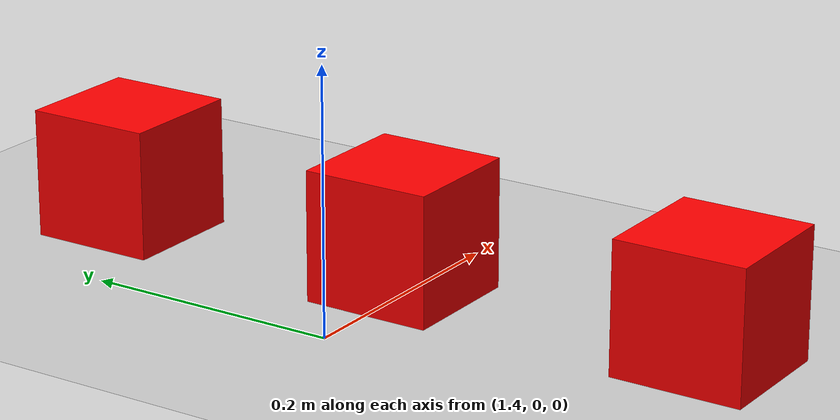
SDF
<sdf version='1.9'>
  <world name='empty'>
    <physics name='1ms' type='ignored'>
      <max_step_size>0.001</max_step_size>
      <real_time_factor>1</real_time_factor>
      <real_time_update_rate>1000</real_time_update_rate>
    </physics>
    <plugin name='gz::sim::systems::Physics' filename='ignition-gazebo-physics-system'/>
    <plugin name='gz::sim::systems::UserCommands' filename='ignition-gazebo-user-commands-system'/>
    <plugin name='gz::sim::systems::SceneBroadcaster' filename='ignition-gazebo-scene-broadcaster-system'/>
    <plugin name='gz::sim::systems::Contact' filename='ignition-gazebo-contact-system'/>
    <gravity>0 0 -9.8</gravity>
    <magnetic_field>6e-06 2.3e-05 -4.2e-05</magnetic_field>
    <atmosphere type='adiabatic'/>
    <scene>
      <ambient>0.4 0.4 0.4 1</ambient>
      <background>0.7 0.7 0.7 1</background>
      <shadows>true</shadows>
    </scene>
    <model name='ground_plane'>
      <static>true</static>
      <link name='link'>
        <collision name='collision'>
          <geometry>
            <plane>
              <normal>0 0 1</normal>
              <size>100 100</size>
            </plane>
          </geometry>
          <surface>
            <friction>
              <ode/>
            </friction>
            <bounce/>
            <contact/>
          </surface>
        </collision>
        <visual name='visual'>
          <geometry>
            <plane>
              <normal>0 0 1</normal>
              <size>100 100</size>
            </plane>
          </geometry>
          <material>
            <ambient>0.8 0.8 0.8 1</ambient>
            <diffuse>0.8 0.8 0.8 1</diffuse>
            <specular>0.8 0.8 0.8 1</specular>
          </material>
        </visual>
        <pose>0 0 0 0 -0 0</pose>
        <inertial>
          <pose>0 0 0 0 -0 0</pose>
          <mass>1</mass>
          <inertia>
            <ixx>1</ixx>
            <ixy>0</ixy>
            <ixz>0</ixz>
            <iyy>1</iyy>
            <iyz>0</iyz>
            <izz>1</izz>
          </inertia>
        </inertial>
        <enable_wind>false</enable_wind>
      </link>
      <pose>0 0 0 0 -0 0</pose>
      <self_collide>false</self_collide>
    </model>
    <model name='cube_1'>
      <link name='link_0'>
        <inertial>
          <mass>0.2</mass>
          <inertia>
            <ixx>0.000333</ixx>
            <ixy>0</ixy>
            <ixz>0</ixz>
            <iyy>0.000333</iyy>
            <iyz>0</iyz>
            <izz>0.000333</izz>
          </inertia>
          <pose>0 0 0 0 -0 0</pose>
        </inertial>
        <pose>0 0 0 0 -0 0</pose>
        <gravity>1</gravity>
        <self_collide>0</self_collide>
        <kinematic>0</kinematic>
        <enable_wind>0</enable_wind>
        <visual name='visual'>
          <pose>0 0 0 0 -0 0</pose>
          <geometry>
            <box>
              <size>0.1 0.1 0.1</size>
            </box>
          </geometry>
          <material>
            <lighting>1</lighting>
            <script>
              <uri>file://media/materials/scripts/gazebo.material</uri>
              <name>Gazebo/Grey</name>
            </script>
            <shader type='pixel'>
              <normal_map>__default__</normal_map>
            </shader>
            <ambient>0.3 0.3 0.3 1</ambient>
            <diffuse>1 0 0 1</diffuse>
            <specular>0.01 0.01 0.01 1</specular>
            <emissive>0 0 0 1</emissive>
          </material>
          <transparency>0</transparency>
          <cast_shadows>1</cast_shadows>
        </visual>
        <collision name='collision'>
          <laser_retro>0</laser_retro>
          <max_contacts>10</max_contacts>
          <pose>0 0 0 0 -0 0</pose>
          <geometry>
            <box>
              <size>0.1 0.1 0.1</size>
            </box>
          </geometry>
          <surface>
            <friction>
              <ode>
                <mu>1</mu>
                <mu2>1</mu2>
                <fdir1>0 0 0</fdir1>
                <slip1>0</slip1>
                <slip2>0</slip2>
              </ode>
              <torsional>
                <coefficient>1</coefficient>
                <patch_radius>0</patch_radius>
                <surface_radius>0</surface_radius>
                <use_patch_radius>1</use_patch_radius>
                <ode>
                  <slip>0</slip>
                </ode>
              </torsional>
            </friction>
            <bounce>
              <restitution_coefficient>0</restitution_coefficient>
              <threshold>1e+06</threshold>
            </bounce>
            <contact>
              <collide_without_contact>0</collide_without_contact>
              <collide_without_contact_bitmask>1</collide_without_contact_bitmask>
              <collide_bitmask>1</collide_bitmask>
              <ode>
                <soft_cfm>0</soft_cfm>
                <soft_erp>0.2</soft_erp>
                <kp>1e+13</kp>
                <kd>1</kd>
                <max_vel>0.01</max_vel>
                <min_depth>0</min_depth>
              </ode>
              <bullet>
                <split_impulse>1</split_impulse>
                <split_impulse_penetration_threshold>-0.01</split_impulse_penetration_threshold>
                <soft_cfm>0</soft_cfm>
                <soft_erp>0.2</soft_erp>
                <kp>1e+13</kp>
                <kd>1</kd>
              </bullet>
            </contact>
          </surface>
        </collision>
      </link>
      <static>0</static>
      <allow_auto_disable>1</allow_auto_disable>
      <pose>1.5 0.25 0.05 0 -0 0</pose>
    </model>
    <model name='cube_2'>
      <link name='link_0'>
        <inertial>
          <mass>0.2</mass>
          <inertia>
            <ixx>0.000333</ixx>
            <ixy>0</ixy>
            <ixz>0</ixz>
            <iyy>0.000333</iyy>
            <iyz>0</iyz>
            <izz>0.000333</izz>
          </inertia>
          <pose>0 0 0 0 -0 0</pose>
        </inertial>
        <pose>0 0 0 0 -0 0</pose>
        <gravity>1</gravity>
        <self_collide>0</self_collide>
        <kinematic>0</kinematic>
        <enable_wind>0</enable_wind>
        <visual name='visual'>
          <pose>0 0 0 0 -0 0</pose>
          <geometry>
            <box>
              <size>0.1 0.1 0.1</size>
            </box>
          </geometry>
          <material>
            <lighting>1</lighting>
            <script>
              <uri>file://media/materials/scripts/gazebo.material</uri>
              <name>Gazebo/Grey</name>
            </script>
            <shader type='pixel'>
              <normal_map>__default__</normal_map>
            </shader>
            <ambient>0.3 0.3 0.3 1</ambient>
            <diffuse>1 0 0 1</diffuse>
            <specular>0.01 0.01 0.01 1</specular>
            <emissive>0 0 0 1</emissive>
          </material>
          <transparency>0</transparency>
          <cast_shadows>1</cast_shadows>
        </visual>
        <collision name='collision'>
          <laser_retro>0</laser_retro>
          <max_contacts>10</max_contacts>
          <pose>0 0 0 0 -0 0</pose>
          <geometry>
            <box>
              <size>0.1 0.1 0.1</size>
            </box>
          </geometry>
          <surface>
            <friction>
              <ode>
                <mu>1</mu>
                <mu2>1</mu2>
                <fdir1>0 0 0</fdir1>
                <slip1>0</slip1>
                <slip2>0</slip2>
              </ode>
              <torsional>
                <coefficient>1</coefficient>
                <patch_radius>0</patch_radius>
                <surface_radius>0</surface_radius>
                <use_patch_radius>1</use_patch_radius>
                <ode>
                  <slip>0</slip>
                </ode>
              </torsional>
            </friction>
            <bounce>
              <restitution_coefficient>0</restitution_coefficient>
              <threshold>1e+06</threshold>
            </bounce>
            <contact>
              <collide_without_contact>0</collide_without_contact>
              <collide_without_contact_bitmask>1</collide_without_contact_bitmask>
              <collide_bitmask>1</collide_bitmask>
              <ode>
                <soft_cfm>0</soft_cfm>
                <soft_erp>0.2</soft_erp>
                <kp>1e+13</kp>
                <kd>1</kd>
                <max_vel>0.01</max_vel>
                <min_depth>0</min_depth>
              </ode>
              <bullet>
                <split_impulse>1</split_impulse>
                <split_impulse_penetration_threshold>-0.01</split_impulse_penetration_threshold>
                <soft_cfm>0</soft_cfm>
                <soft_erp>0.2</soft_erp>
                <kp>1e+13</kp>
                <kd>1</kd>
              </bullet>
            </contact>
          </surface>
        </collision>
      </link>
      <static>0</static>
      <allow_auto_disable>1</allow_auto_disable>
      <pose>1.5 0 0.05 0 -0 0</pose>
    </model>
    <model name='cube_3'>
      <link name='link_0'>
        <inertial>
          <mass>0.2</mass>
          <inertia>
            <ixx>0.000333</ixx>
            <ixy>0</ixy>
            <ixz>0</ixz>
            <iyy>0.000333</iyy>
            <iyz>0</iyz>
            <izz>0.000333</izz>
          </inertia>
          <pose>0 0 0 0 -0 0</pose>
        </inertial>
        <pose>0 0 0 0 -0 0</pose>
        <gravity>1</gravity>
        <self_collide>0</self_collide>
        <kinematic>0</kinematic>
        <enable_wind>0</enable_wind>
        <visual name='visual'>
          <pose>0 0 0 0 -0 0</pose>
          <geometry>
            <box>
              <size>0.1 0.1 0.1</size>
            </box>
          </geometry>
          <material>
            <lighting>1</lighting>
            <script>
              <uri>file://media/materials/scripts/gazebo.material</uri>
              <name>Gazebo/Grey</name>
            </script>
            <shader type='pixel'>
              <normal_map>__default__</normal_map>
            </shader>
            <ambient>0.3 0.3 0.3 1</ambient>
            <diffuse>1 0 0 1</diffuse>
            <specular>0.01 0.01 0.01 1</specular>
            <emissive>0 0 0 1</emissive>
          </material>
          <transparency>0</transparency>
          <cast_shadows>1</cast_shadows>
        </visual>
        <collision name='collision'>
          <laser_retro>0</laser_retro>
          <max_contacts>10</max_contacts>
          <pose>0 0 0 0 -0 0</pose>
          <geometry>
            <box>
              <size>0.1 0.1 0.1</size>
            </box>
          </geometry>
          <surface>
            <friction>
              <ode>
                <mu>1</mu>
                <mu2>1</mu2>
                <fdir1>0 0 0</fdir1>
                <slip1>0</slip1>
                <slip2>0</slip2>
              </ode>
              <torsional>
                <coefficient>1</coefficient>
                <patch_radius>0</patch_radius>
                <surface_radius>0</surface_radius>
                <use_patch_radius>1</use_patch_radius>
                <ode>
                  <slip>0</slip>
                </ode>
              </torsional>
            </friction>
            <bounce>
              <restitution_coefficient>0</restitution_coefficient>
              <threshold>1e+06</threshold>
            </bounce>
            <contact>
              <collide_without_contact>0</collide_without_contact>
              <collide_without_contact_bitmask>1</collide_without_contact_bitmask>
              <collide_bitmask>1</collide_bitmask>
              <ode>
                <soft_cfm>0</soft_cfm>
                <soft_erp>0.2</soft_erp>
                <kp>1e+13</kp>
                <kd>1</kd>
                <max_vel>0.01</max_vel>
                <min_depth>0</min_depth>
              </ode>
              <bullet>
                <split_impulse>1</split_impulse>
                <split_impulse_penetration_threshold>-0.01</split_impulse_penetration_threshold>
                <soft_cfm>0</soft_cfm>
                <soft_erp>0.2</soft_erp>
                <kp>1e+13</kp>
                <kd>1</kd>
              </bullet>
            </contact>
          </surface>
        </collision>
      </link>
      <static>0</static>
      <allow_auto_disable>1</allow_auto_disable>
      <pose>1.5 -0.25 0.05 0 -0 0</pose>
    </model>
    <light name='sun' type='directional'>
      <pose>0 0 10 0 -0 0</pose>
      <cast_shadows>true</cast_shadows>
      <intensity>1</intensity>
      <direction>-0.5 0.1 -0.9</direction>
      <diffuse>0.8 0.8 0.8 1</diffuse>
      <specular>0.2 0.2 0.2 1</specular>
      <attenuation>
        <range>1000</range>
        <linear>0.01</linear>
        <constant>0.90000000000000002</constant>
        <quadratic>0.001</quadratic>
      </attenuation>
      <spot>
        <inner_angle>0</inner_angle>
        <outer_angle>0</outer_angle>
        <falloff>0</falloff>
      </spot>
    </light>
  </world>
</sdf>
